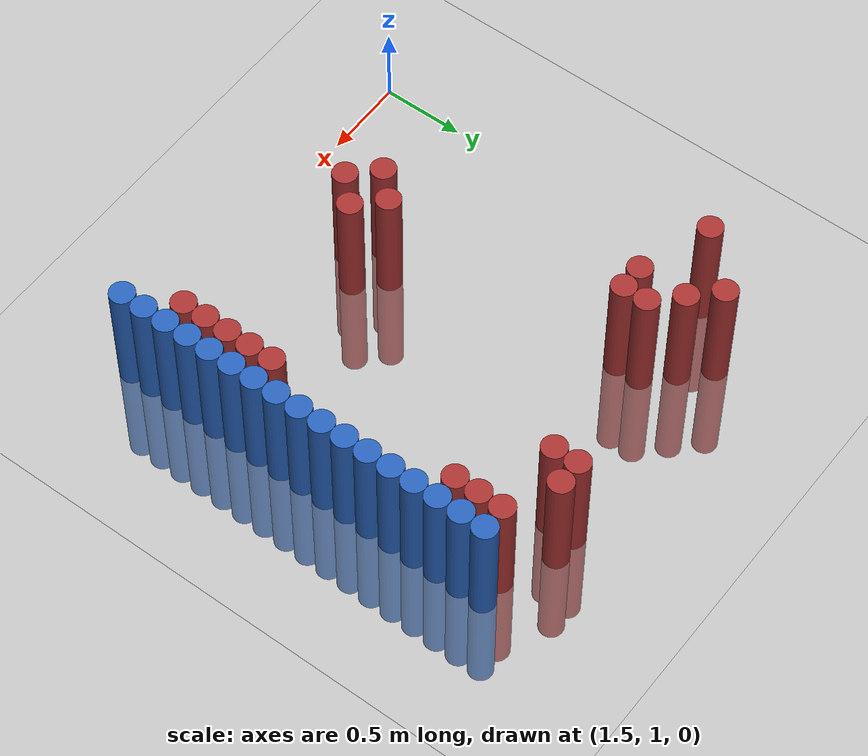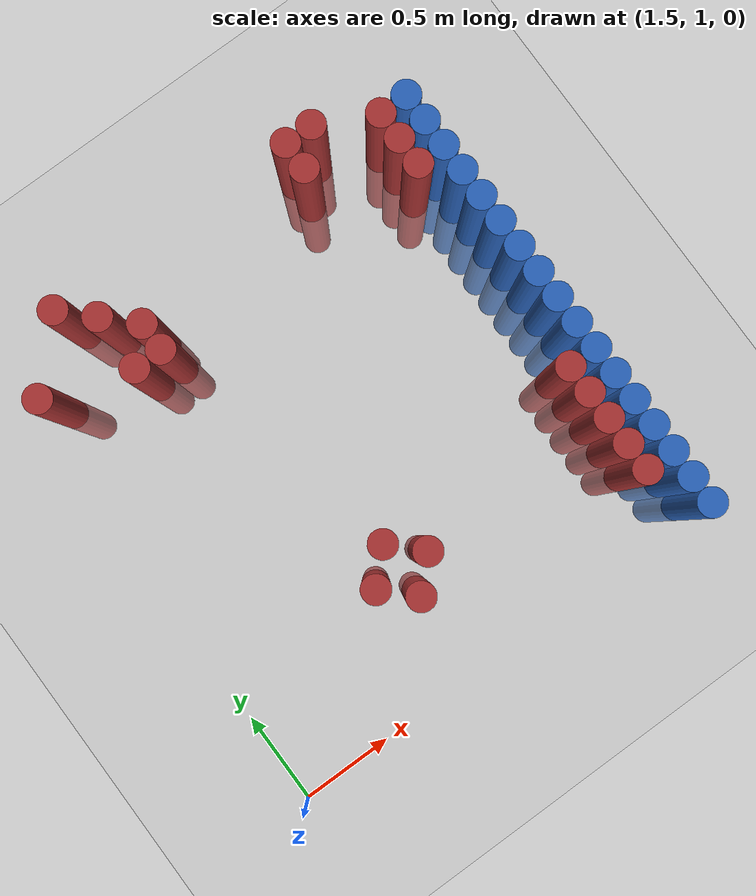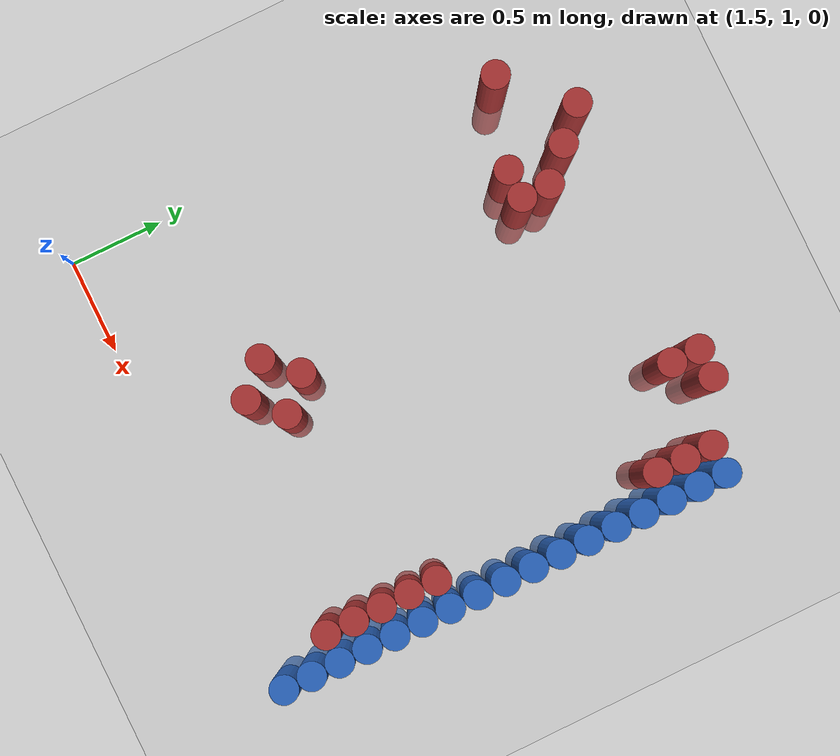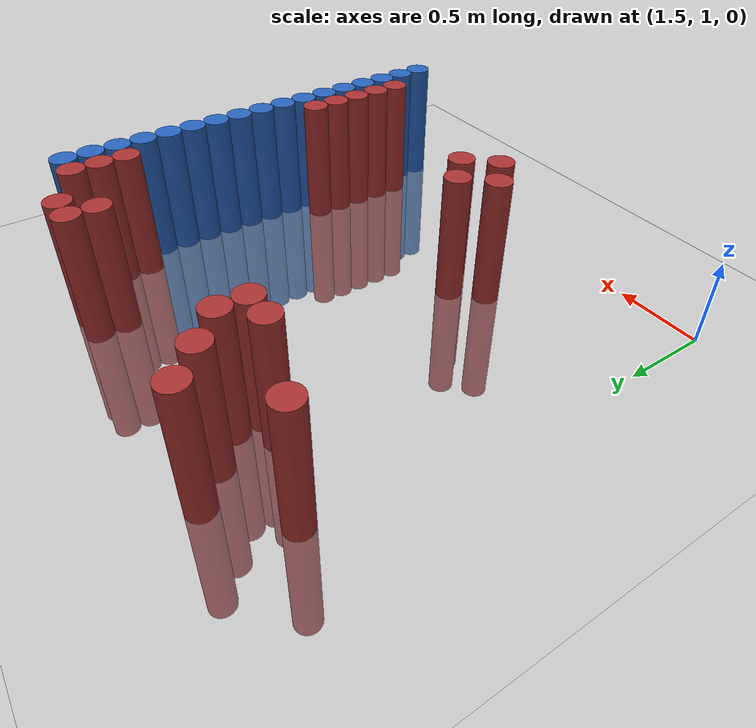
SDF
<sdf version="1.6">
 <world name="default">
  <model name="ground_plane">
   <static>1</static>
   <link name="link">
    <collision name="collision">
     <geometry><plane><normal>0 0 1</normal><size>100 100</size></plane></geometry>
     <surface><friction><ode><mu>100</mu><mu2>50</mu2></ode></friction></surface>
    </collision>
    <visual name="visual">
     <cast_shadows>0</cast_shadows>
     <geometry><plane><normal>0 0 1</normal><size>100 100</size></plane></geometry>
     <material>
      <script><uri>file://media/materials/scripts/gazebo.material</uri><name>Gazebo/Grey</name></script>
     </material>
    </visual>
   </link>
  </model>
  <model name="unit_cylinder_130">
   <static>1</static>
   <pose>3.925000 1.225000 0.000000 0.000000 0.000000 0.000000</pose>
   <link name="link">
    <inertial>
     <mass>1</mass>
     <inertia><ixx>0.145833</ixx><ixy>0</ixy><ixz>0</ixz><iyy>0.145833</iyy><iyz>0</iyz><izz>0.125</izz></inertia>
    </inertial>
    <collision name="collision">
     <geometry><cylinder><radius>0.075000</radius><length>1.5</length></cylinder></geometry>
    </collision>
    <visual name="visual">
     <geometry><cylinder><radius>0.075000</radius><length>1.5</length></cylinder></geometry>
     <material>
      <ambient>0.152000 0.379000 0.720000 1</ambient>
      <diffuse>0.152000 0.379000 0.720000 1</diffuse>
     </material>
     <material>
      <script><name>Gazebo/Grey</name><uri>file://media/materials/scripts/gazebo.material</uri></script>
     </material>
    </visual>
   </link>
  </model>
  <model name="unit_cylinder_132">
   <static>1</static>
   <pose>3.925000 1.375000 0.000000 0.000000 0.000000 0.000000</pose>
   <link name="link">
    <inertial>
     <mass>1</mass>
     <inertia><ixx>0.145833</ixx><ixy>0</ixy><ixz>0</ixz><iyy>0.145833</iyy><iyz>0</iyz><izz>0.125</izz></inertia>
    </inertial>
    <collision name="collision">
     <geometry><cylinder><radius>0.075000</radius><length>1.5</length></cylinder></geometry>
    </collision>
    <visual name="visual">
     <geometry><cylinder><radius>0.075000</radius><length>1.5</length></cylinder></geometry>
     <material>
      <ambient>0.152000 0.379000 0.720000 1</ambient>
      <diffuse>0.152000 0.379000 0.720000 1</diffuse>
     </material>
     <material>
      <script><name>Gazebo/Grey</name><uri>file://media/materials/scripts/gazebo.material</uri></script>
     </material>
    </visual>
   </link>
  </model>
  <model name="unit_cylinder_134">
   <static>1</static>
   <pose>3.925000 1.525000 0.000000 0.000000 0.000000 0.000000</pose>
   <link name="link">
    <inertial>
     <mass>1</mass>
     <inertia><ixx>0.145833</ixx><ixy>0</ixy><ixz>0</ixz><iyy>0.145833</iyy><iyz>0</iyz><izz>0.125</izz></inertia>
    </inertial>
    <collision name="collision">
     <geometry><cylinder><radius>0.075000</radius><length>1.5</length></cylinder></geometry>
    </collision>
    <visual name="visual">
     <geometry><cylinder><radius>0.075000</radius><length>1.5</length></cylinder></geometry>
     <material>
      <ambient>0.152000 0.379000 0.720000 1</ambient>
      <diffuse>0.152000 0.379000 0.720000 1</diffuse>
     </material>
     <material>
      <script><name>Gazebo/Grey</name><uri>file://media/materials/scripts/gazebo.material</uri></script>
     </material>
    </visual>
   </link>
  </model>
  <model name="unit_cylinder_136">
   <static>1</static>
   <pose>3.925000 1.675000 0.000000 0.000000 0.000000 0.000000</pose>
   <link name="link">
    <inertial>
     <mass>1</mass>
     <inertia><ixx>0.145833</ixx><ixy>0</ixy><ixz>0</ixz><iyy>0.145833</iyy><iyz>0</iyz><izz>0.125</izz></inertia>
    </inertial>
    <collision name="collision">
     <geometry><cylinder><radius>0.075000</radius><length>1.5</length></cylinder></geometry>
    </collision>
    <visual name="visual">
     <geometry><cylinder><radius>0.075000</radius><length>1.5</length></cylinder></geometry>
     <material>
      <ambient>0.152000 0.379000 0.720000 1</ambient>
      <diffuse>0.152000 0.379000 0.720000 1</diffuse>
     </material>
     <material>
      <script><name>Gazebo/Grey</name><uri>file://media/materials/scripts/gazebo.material</uri></script>
     </material>
    </visual>
   </link>
  </model>
  <model name="unit_cylinder_138">
   <static>1</static>
   <pose>3.925000 1.825000 0.000000 0.000000 0.000000 0.000000</pose>
   <link name="link">
    <inertial>
     <mass>1</mass>
     <inertia><ixx>0.145833</ixx><ixy>0</ixy><ixz>0</ixz><iyy>0.145833</iyy><iyz>0</iyz><izz>0.125</izz></inertia>
    </inertial>
    <collision name="collision">
     <geometry><cylinder><radius>0.075000</radius><length>1.5</length></cylinder></geometry>
    </collision>
    <visual name="visual">
     <geometry><cylinder><radius>0.075000</radius><length>1.5</length></cylinder></geometry>
     <material>
      <ambient>0.152000 0.379000 0.720000 1</ambient>
      <diffuse>0.152000 0.379000 0.720000 1</diffuse>
     </material>
     <material>
      <script><name>Gazebo/Grey</name><uri>file://media/materials/scripts/gazebo.material</uri></script>
     </material>
    </visual>
   </link>
  </model>
  <model name="unit_cylinder_140">
   <static>1</static>
   <pose>3.925000 1.975000 0.000000 0.000000 0.000000 0.000000</pose>
   <link name="link">
    <inertial>
     <mass>1</mass>
     <inertia><ixx>0.145833</ixx><ixy>0</ixy><ixz>0</ixz><iyy>0.145833</iyy><iyz>0</iyz><izz>0.125</izz></inertia>
    </inertial>
    <collision name="collision">
     <geometry><cylinder><radius>0.075000</radius><length>1.5</length></cylinder></geometry>
    </collision>
    <visual name="visual">
     <geometry><cylinder><radius>0.075000</radius><length>1.5</length></cylinder></geometry>
     <material>
      <ambient>0.152000 0.379000 0.720000 1</ambient>
      <diffuse>0.152000 0.379000 0.720000 1</diffuse>
     </material>
     <material>
      <script><name>Gazebo/Grey</name><uri>file://media/materials/scripts/gazebo.material</uri></script>
     </material>
    </visual>
   </link>
  </model>
  <model name="unit_cylinder_142">
   <static>1</static>
   <pose>3.925000 2.125000 0.000000 0.000000 0.000000 0.000000</pose>
   <link name="link">
    <inertial>
     <mass>1</mass>
     <inertia><ixx>0.145833</ixx><ixy>0</ixy><ixz>0</ixz><iyy>0.145833</iyy><iyz>0</iyz><izz>0.125</izz></inertia>
    </inertial>
    <collision name="collision">
     <geometry><cylinder><radius>0.075000</radius><length>1.5</length></cylinder></geometry>
    </collision>
    <visual name="visual">
     <geometry><cylinder><radius>0.075000</radius><length>1.5</length></cylinder></geometry>
     <material>
      <ambient>0.152000 0.379000 0.720000 1</ambient>
      <diffuse>0.152000 0.379000 0.720000 1</diffuse>
     </material>
     <material>
      <script><name>Gazebo/Grey</name><uri>file://media/materials/scripts/gazebo.material</uri></script>
     </material>
    </visual>
   </link>
  </model>
  <model name="unit_cylinder_144">
   <static>1</static>
   <pose>3.925000 2.275000 0.000000 0.000000 0.000000 0.000000</pose>
   <link name="link">
    <inertial>
     <mass>1</mass>
     <inertia><ixx>0.145833</ixx><ixy>0</ixy><ixz>0</ixz><iyy>0.145833</iyy><iyz>0</iyz><izz>0.125</izz></inertia>
    </inertial>
    <collision name="collision">
     <geometry><cylinder><radius>0.075000</radius><length>1.5</length></cylinder></geometry>
    </collision>
    <visual name="visual">
     <geometry><cylinder><radius>0.075000</radius><length>1.5</length></cylinder></geometry>
     <material>
      <ambient>0.152000 0.379000 0.720000 1</ambient>
      <diffuse>0.152000 0.379000 0.720000 1</diffuse>
     </material>
     <material>
      <script><name>Gazebo/Grey</name><uri>file://media/materials/scripts/gazebo.material</uri></script>
     </material>
    </visual>
   </link>
  </model>
  <model name="unit_cylinder_146">
   <static>1</static>
   <pose>3.925000 2.425000 0.000000 0.000000 0.000000 0.000000</pose>
   <link name="link">
    <inertial>
     <mass>1</mass>
     <inertia><ixx>0.145833</ixx><ixy>0</ixy><ixz>0</ixz><iyy>0.145833</iyy><iyz>0</iyz><izz>0.125</izz></inertia>
    </inertial>
    <collision name="collision">
     <geometry><cylinder><radius>0.075000</radius><length>1.5</length></cylinder></geometry>
    </collision>
    <visual name="visual">
     <geometry><cylinder><radius>0.075000</radius><length>1.5</length></cylinder></geometry>
     <material>
      <ambient>0.152000 0.379000 0.720000 1</ambient>
      <diffuse>0.152000 0.379000 0.720000 1</diffuse>
     </material>
     <material>
      <script><name>Gazebo/Grey</name><uri>file://media/materials/scripts/gazebo.material</uri></script>
     </material>
    </visual>
   </link>
  </model>
  <model name="unit_cylinder_148">
   <static>1</static>
   <pose>3.925000 2.575000 0.000000 0.000000 0.000000 0.000000</pose>
   <link name="link">
    <inertial>
     <mass>1</mass>
     <inertia><ixx>0.145833</ixx><ixy>0</ixy><ixz>0</ixz><iyy>0.145833</iyy><iyz>0</iyz><izz>0.125</izz></inertia>
    </inertial>
    <collision name="collision">
     <geometry><cylinder><radius>0.075000</radius><length>1.5</length></cylinder></geometry>
    </collision>
    <visual name="visual">
     <geometry><cylinder><radius>0.075000</radius><length>1.5</length></cylinder></geometry>
     <material>
      <ambient>0.152000 0.379000 0.720000 1</ambient>
      <diffuse>0.152000 0.379000 0.720000 1</diffuse>
     </material>
     <material>
      <script><name>Gazebo/Grey</name><uri>file://media/materials/scripts/gazebo.material</uri></script>
     </material>
    </visual>
   </link>
  </model>
  <model name="unit_cylinder_150">
   <static>1</static>
   <pose>3.925000 2.725000 0.000000 0.000000 0.000000 0.000000</pose>
   <link name="link">
    <inertial>
     <mass>1</mass>
     <inertia><ixx>0.145833</ixx><ixy>0</ixy><ixz>0</ixz><iyy>0.145833</iyy><iyz>0</iyz><izz>0.125</izz></inertia>
    </inertial>
    <collision name="collision">
     <geometry><cylinder><radius>0.075000</radius><length>1.5</length></cylinder></geometry>
    </collision>
    <visual name="visual">
     <geometry><cylinder><radius>0.075000</radius><length>1.5</length></cylinder></geometry>
     <material>
      <ambient>0.152000 0.379000 0.720000 1</ambient>
      <diffuse>0.152000 0.379000 0.720000 1</diffuse>
     </material>
     <material>
      <script><name>Gazebo/Grey</name><uri>file://media/materials/scripts/gazebo.material</uri></script>
     </material>
    </visual>
   </link>
  </model>
  <model name="unit_cylinder_152">
   <static>1</static>
   <pose>3.925000 2.875000 0.000000 0.000000 0.000000 0.000000</pose>
   <link name="link">
    <inertial>
     <mass>1</mass>
     <inertia><ixx>0.145833</ixx><ixy>0</ixy><ixz>0</ixz><iyy>0.145833</iyy><iyz>0</iyz><izz>0.125</izz></inertia>
    </inertial>
    <collision name="collision">
     <geometry><cylinder><radius>0.075000</radius><length>1.5</length></cylinder></geometry>
    </collision>
    <visual name="visual">
     <geometry><cylinder><radius>0.075000</radius><length>1.5</length></cylinder></geometry>
     <material>
      <ambient>0.152000 0.379000 0.720000 1</ambient>
      <diffuse>0.152000 0.379000 0.720000 1</diffuse>
     </material>
     <material>
      <script><name>Gazebo/Grey</name><uri>file://media/materials/scripts/gazebo.material</uri></script>
     </material>
    </visual>
   </link>
  </model>
  <model name="unit_cylinder_154">
   <static>1</static>
   <pose>3.925000 3.025000 0.000000 0.000000 0.000000 0.000000</pose>
   <link name="link">
    <inertial>
     <mass>1</mass>
     <inertia><ixx>0.145833</ixx><ixy>0</ixy><ixz>0</ixz><iyy>0.145833</iyy><iyz>0</iyz><izz>0.125</izz></inertia>
    </inertial>
    <collision name="collision">
     <geometry><cylinder><radius>0.075000</radius><length>1.5</length></cylinder></geometry>
    </collision>
    <visual name="visual">
     <geometry><cylinder><radius>0.075000</radius><length>1.5</length></cylinder></geometry>
     <material>
      <ambient>0.152000 0.379000 0.720000 1</ambient>
      <diffuse>0.152000 0.379000 0.720000 1</diffuse>
     </material>
     <material>
      <script><name>Gazebo/Grey</name><uri>file://media/materials/scripts/gazebo.material</uri></script>
     </material>
    </visual>
   </link>
  </model>
  <model name="unit_cylinder_156">
   <static>1</static>
   <pose>3.925000 3.175000 0.000000 0.000000 0.000000 0.000000</pose>
   <link name="link">
    <inertial>
     <mass>1</mass>
     <inertia><ixx>0.145833</ixx><ixy>0</ixy><ixz>0</ixz><iyy>0.145833</iyy><iyz>0</iyz><izz>0.125</izz></inertia>
    </inertial>
    <collision name="collision">
     <geometry><cylinder><radius>0.075000</radius><length>1.5</length></cylinder></geometry>
    </collision>
    <visual name="visual">
     <geometry><cylinder><radius>0.075000</radius><length>1.5</length></cylinder></geometry>
     <material>
      <ambient>0.152000 0.379000 0.720000 1</ambient>
      <diffuse>0.152000 0.379000 0.720000 1</diffuse>
     </material>
     <material>
      <script><name>Gazebo/Grey</name><uri>file://media/materials/scripts/gazebo.material</uri></script>
     </material>
    </visual>
   </link>
  </model>
  <model name="unit_cylinder_158">
   <static>1</static>
   <pose>3.925000 3.325000 0.000000 0.000000 0.000000 0.000000</pose>
   <link name="link">
    <inertial>
     <mass>1</mass>
     <inertia><ixx>0.145833</ixx><ixy>0</ixy><ixz>0</ixz><iyy>0.145833</iyy><iyz>0</iyz><izz>0.125</izz></inertia>
    </inertial>
    <collision name="collision">
     <geometry><cylinder><radius>0.075000</radius><length>1.5</length></cylinder></geometry>
    </collision>
    <visual name="visual">
     <geometry><cylinder><radius>0.075000</radius><length>1.5</length></cylinder></geometry>
     <material>
      <ambient>0.152000 0.379000 0.720000 1</ambient>
      <diffuse>0.152000 0.379000 0.720000 1</diffuse>
     </material>
     <material>
      <script><name>Gazebo/Grey</name><uri>file://media/materials/scripts/gazebo.material</uri></script>
     </material>
    </visual>
   </link>
  </model>
  <model name="unit_cylinder_160">
   <static>1</static>
   <pose>3.925000 3.475000 0.000000 0.000000 0.000000 0.000000</pose>
   <link name="link">
    <inertial>
     <mass>1</mass>
     <inertia><ixx>0.145833</ixx><ixy>0</ixy><ixz>0</ixz><iyy>0.145833</iyy><iyz>0</iyz><izz>0.125</izz></inertia>
    </inertial>
    <collision name="collision">
     <geometry><cylinder><radius>0.075000</radius><length>1.5</length></cylinder></geometry>
    </collision>
    <visual name="visual">
     <geometry><cylinder><radius>0.075000</radius><length>1.5</length></cylinder></geometry>
     <material>
      <ambient>0.152000 0.379000 0.720000 1</ambient>
      <diffuse>0.152000 0.379000 0.720000 1</diffuse>
     </material>
     <material>
      <script><name>Gazebo/Grey</name><uri>file://media/materials/scripts/gazebo.material</uri></script>
     </material>
    </visual>
   </link>
  </model>
  <model name="unit_cylinder_425">
   <static>1</static>
   <pose>1.675000 3.325000 0.000000 0.000000 0.000000 0.000000</pose>
   <link name="link">
    <inertial>
     <mass>1</mass>
     <inertia><ixx>0.145833</ixx><ixy>0</ixy><ixz>0</ixz><iyy>0.145833</iyy><iyz>0</iyz><izz>0.125</izz></inertia>
    </inertial>
    <collision name="collision">
     <geometry><cylinder><radius>0.075000</radius><length>1.5</length></cylinder></geometry>
    </collision>
    <visual name="visual">
     <geometry><cylinder><radius>0.075000</radius><length>1.5</length></cylinder></geometry>
     <material>
      <ambient>0.648000 0.192000 0.192000 1</ambient>
      <diffuse>0.648000 0.192000 0.192000 1</diffuse>
     </material>
     <material>
      <script><name>Gazebo/Grey</name><uri>file://media/materials/scripts/gazebo.material</uri></script>
     </material>
    </visual>
   </link>
  </model>
  <model name="unit_cylinder_432">
   <static>1</static>
   <pose>1.975000 3.625000 0.000000 0.000000 0.000000 0.000000</pose>
   <link name="link">
    <inertial>
     <mass>1</mass>
     <inertia><ixx>0.145833</ixx><ixy>0</ixy><ixz>0</ixz><iyy>0.145833</iyy><iyz>0</iyz><izz>0.125</izz></inertia>
    </inertial>
    <collision name="collision">
     <geometry><cylinder><radius>0.075000</radius><length>1.5</length></cylinder></geometry>
    </collision>
    <visual name="visual">
     <geometry><cylinder><radius>0.075000</radius><length>1.5</length></cylinder></geometry>
     <material>
      <ambient>0.648000 0.192000 0.192000 1</ambient>
      <diffuse>0.648000 0.192000 0.192000 1</diffuse>
     </material>
     <material>
      <script><name>Gazebo/Grey</name><uri>file://media/materials/scripts/gazebo.material</uri></script>
     </material>
    </visual>
   </link>
  </model>
  <model name="unit_cylinder_436">
   <static>1</static>
   <pose>2.125000 3.175000 0.000000 0.000000 0.000000 0.000000</pose>
   <link name="link">
    <inertial>
     <mass>1</mass>
     <inertia><ixx>0.145833</ixx><ixy>0</ixy><ixz>0</ixz><iyy>0.145833</iyy><iyz>0</iyz><izz>0.125</izz></inertia>
    </inertial>
    <collision name="collision">
     <geometry><cylinder><radius>0.075000</radius><length>1.5</length></cylinder></geometry>
    </collision>
    <visual name="visual">
     <geometry><cylinder><radius>0.075000</radius><length>1.5</length></cylinder></geometry>
     <material>
      <ambient>0.648000 0.192000 0.192000 1</ambient>
      <diffuse>0.648000 0.192000 0.192000 1</diffuse>
     </material>
     <material>
      <script><name>Gazebo/Grey</name><uri>file://media/materials/scripts/gazebo.material</uri></script>
     </material>
    </visual>
   </link>
  </model>
  <model name="unit_cylinder_437">
   <static>1</static>
   <pose>2.125000 3.475000 0.000000 0.000000 0.000000 0.000000</pose>
   <link name="link">
    <inertial>
     <mass>1</mass>
     <inertia><ixx>0.145833</ixx><ixy>0</ixy><ixz>0</ixz><iyy>0.145833</iyy><iyz>0</iyz><izz>0.125</izz></inertia>
    </inertial>
    <collision name="collision">
     <geometry><cylinder><radius>0.075000</radius><length>1.5</length></cylinder></geometry>
    </collision>
    <visual name="visual">
     <geometry><cylinder><radius>0.075000</radius><length>1.5</length></cylinder></geometry>
     <material>
      <ambient>0.648000 0.192000 0.192000 1</ambient>
      <diffuse>0.648000 0.192000 0.192000 1</diffuse>
     </material>
     <material>
      <script><name>Gazebo/Grey</name><uri>file://media/materials/scripts/gazebo.material</uri></script>
     </material>
    </visual>
   </link>
  </model>
  <model name="unit_cylinder_439">
   <static>1</static>
   <pose>2.275000 3.175000 0.000000 0.000000 0.000000 0.000000</pose>
   <link name="link">
    <inertial>
     <mass>1</mass>
     <inertia><ixx>0.145833</ixx><ixy>0</ixy><ixz>0</ixz><iyy>0.145833</iyy><iyz>0</iyz><izz>0.125</izz></inertia>
    </inertial>
    <collision name="collision">
     <geometry><cylinder><radius>0.075000</radius><length>1.5</length></cylinder></geometry>
    </collision>
    <visual name="visual">
     <geometry><cylinder><radius>0.075000</radius><length>1.5</length></cylinder></geometry>
     <material>
      <ambient>0.648000 0.192000 0.192000 1</ambient>
      <diffuse>0.648000 0.192000 0.192000 1</diffuse>
     </material>
     <material>
      <script><name>Gazebo/Grey</name><uri>file://media/materials/scripts/gazebo.material</uri></script>
     </material>
    </visual>
   </link>
  </model>
  <model name="unit_cylinder_440">
   <static>1</static>
   <pose>2.275000 3.325000 0.000000 0.000000 0.000000 0.000000</pose>
   <link name="link">
    <inertial>
     <mass>1</mass>
     <inertia><ixx>0.145833</ixx><ixy>0</ixy><ixz>0</ixz><iyy>0.145833</iyy><iyz>0</iyz><izz>0.125</izz></inertia>
    </inertial>
    <collision name="collision">
     <geometry><cylinder><radius>0.075000</radius><length>1.5</length></cylinder></geometry>
    </collision>
    <visual name="visual">
     <geometry><cylinder><radius>0.075000</radius><length>1.5</length></cylinder></geometry>
     <material>
      <ambient>0.648000 0.192000 0.192000 1</ambient>
      <diffuse>0.648000 0.192000 0.192000 1</diffuse>
     </material>
     <material>
      <script><name>Gazebo/Grey</name><uri>file://media/materials/scripts/gazebo.material</uri></script>
     </material>
    </visual>
   </link>
  </model>
  <model name="unit_cylinder_441">
   <static>1</static>
   <pose>2.425000 1.675000 0.000000 0.000000 0.000000 0.000000</pose>
   <link name="link">
    <inertial>
     <mass>1</mass>
     <inertia><ixx>0.145833</ixx><ixy>0</ixy><ixz>0</ixz><iyy>0.145833</iyy><iyz>0</iyz><izz>0.125</izz></inertia>
    </inertial>
    <collision name="collision">
     <geometry><cylinder><radius>0.075000</radius><length>1.5</length></cylinder></geometry>
    </collision>
    <visual name="visual">
     <geometry><cylinder><radius>0.075000</radius><length>1.5</length></cylinder></geometry>
     <material>
      <ambient>0.648000 0.192000 0.192000 1</ambient>
      <diffuse>0.648000 0.192000 0.192000 1</diffuse>
     </material>
     <material>
      <script><name>Gazebo/Grey</name><uri>file://media/materials/scripts/gazebo.material</uri></script>
     </material>
    </visual>
   </link>
  </model>
  <model name="unit_cylinder_443">
   <static>1</static>
   <pose>2.575000 1.525000 0.000000 0.000000 0.000000 0.000000</pose>
   <link name="link">
    <inertial>
     <mass>1</mass>
     <inertia><ixx>0.145833</ixx><ixy>0</ixy><ixz>0</ixz><iyy>0.145833</iyy><iyz>0</iyz><izz>0.125</izz></inertia>
    </inertial>
    <collision name="collision">
     <geometry><cylinder><radius>0.075000</radius><length>1.5</length></cylinder></geometry>
    </collision>
    <visual name="visual">
     <geometry><cylinder><radius>0.075000</radius><length>1.5</length></cylinder></geometry>
     <material>
      <ambient>0.648000 0.192000 0.192000 1</ambient>
      <diffuse>0.648000 0.192000 0.192000 1</diffuse>
     </material>
     <material>
      <script><name>Gazebo/Grey</name><uri>file://media/materials/scripts/gazebo.material</uri></script>
     </material>
    </visual>
   </link>
  </model>
  <model name="unit_cylinder_444">
   <static>1</static>
   <pose>2.575000 1.825000 0.000000 0.000000 0.000000 0.000000</pose>
   <link name="link">
    <inertial>
     <mass>1</mass>
     <inertia><ixx>0.145833</ixx><ixy>0</ixy><ixz>0</ixz><iyy>0.145833</iyy><iyz>0</iyz><izz>0.125</izz></inertia>
    </inertial>
    <collision name="collision">
     <geometry><cylinder><radius>0.075000</radius><length>1.5</length></cylinder></geometry>
    </collision>
    <visual name="visual">
     <geometry><cylinder><radius>0.075000</radius><length>1.5</length></cylinder></geometry>
     <material>
      <ambient>0.648000 0.192000 0.192000 1</ambient>
      <diffuse>0.648000 0.192000 0.192000 1</diffuse>
     </material>
     <material>
      <script><name>Gazebo/Grey</name><uri>file://media/materials/scripts/gazebo.material</uri></script>
     </material>
    </visual>
   </link>
  </model>
  <model name="unit_cylinder_446">
   <static>1</static>
   <pose>2.725000 1.675000 0.000000 0.000000 0.000000 0.000000</pose>
   <link name="link">
    <inertial>
     <mass>1</mass>
     <inertia><ixx>0.145833</ixx><ixy>0</ixy><ixz>0</ixz><iyy>0.145833</iyy><iyz>0</iyz><izz>0.125</izz></inertia>
    </inertial>
    <collision name="collision">
     <geometry><cylinder><radius>0.075000</radius><length>1.5</length></cylinder></geometry>
    </collision>
    <visual name="visual">
     <geometry><cylinder><radius>0.075000</radius><length>1.5</length></cylinder></geometry>
     <material>
      <ambient>0.648000 0.192000 0.192000 1</ambient>
      <diffuse>0.648000 0.192000 0.192000 1</diffuse>
     </material>
     <material>
      <script><name>Gazebo/Grey</name><uri>file://media/materials/scripts/gazebo.material</uri></script>
     </material>
    </visual>
   </link>
  </model>
  <model name="unit_cylinder_452">
   <static>1</static>
   <pose>3.325000 3.475000 0.000000 0.000000 0.000000 0.000000</pose>
   <link name="link">
    <inertial>
     <mass>1</mass>
     <inertia><ixx>0.145833</ixx><ixy>0</ixy><ixz>0</ixz><iyy>0.145833</iyy><iyz>0</iyz><izz>0.125</izz></inertia>
    </inertial>
    <collision name="collision">
     <geometry><cylinder><radius>0.075000</radius><length>1.5</length></cylinder></geometry>
    </collision>
    <visual name="visual">
     <geometry><cylinder><radius>0.075000</radius><length>1.5</length></cylinder></geometry>
     <material>
      <ambient>0.648000 0.192000 0.192000 1</ambient>
      <diffuse>0.648000 0.192000 0.192000 1</diffuse>
     </material>
     <material>
      <script><name>Gazebo/Grey</name><uri>file://media/materials/scripts/gazebo.material</uri></script>
     </material>
    </visual>
   </link>
  </model>
  <model name="unit_cylinder_453">
   <static>1</static>
   <pose>3.325000 3.625000 0.000000 0.000000 0.000000 0.000000</pose>
   <link name="link">
    <inertial>
     <mass>1</mass>
     <inertia><ixx>0.145833</ixx><ixy>0</ixy><ixz>0</ixz><iyy>0.145833</iyy><iyz>0</iyz><izz>0.125</izz></inertia>
    </inertial>
    <collision name="collision">
     <geometry><cylinder><radius>0.075000</radius><length>1.5</length></cylinder></geometry>
    </collision>
    <visual name="visual">
     <geometry><cylinder><radius>0.075000</radius><length>1.5</length></cylinder></geometry>
     <material>
      <ambient>0.648000 0.192000 0.192000 1</ambient>
      <diffuse>0.648000 0.192000 0.192000 1</diffuse>
     </material>
     <material>
      <script><name>Gazebo/Grey</name><uri>file://media/materials/scripts/gazebo.material</uri></script>
     </material>
    </visual>
   </link>
  </model>
  <model name="unit_cylinder_457">
   <static>1</static>
   <pose>3.475000 3.625000 0.000000 0.000000 0.000000 0.000000</pose>
   <link name="link">
    <inertial>
     <mass>1</mass>
     <inertia><ixx>0.145833</ixx><ixy>0</ixy><ixz>0</ixz><iyy>0.145833</iyy><iyz>0</iyz><izz>0.125</izz></inertia>
    </inertial>
    <collision name="collision">
     <geometry><cylinder><radius>0.075000</radius><length>1.5</length></cylinder></geometry>
    </collision>
    <visual name="visual">
     <geometry><cylinder><radius>0.075000</radius><length>1.5</length></cylinder></geometry>
     <material>
      <ambient>0.648000 0.192000 0.192000 1</ambient>
      <diffuse>0.648000 0.192000 0.192000 1</diffuse>
     </material>
     <material>
      <script><name>Gazebo/Grey</name><uri>file://media/materials/scripts/gazebo.material</uri></script>
     </material>
    </visual>
   </link>
  </model>
  <model name="unit_cylinder_476">
   <static>1</static>
   <pose>3.775000 1.375000 0.000000 0.000000 0.000000 0.000000</pose>
   <link name="link">
    <inertial>
     <mass>1</mass>
     <inertia><ixx>0.145833</ixx><ixy>0</ixy><ixz>0</ixz><iyy>0.145833</iyy><iyz>0</iyz><izz>0.125</izz></inertia>
    </inertial>
    <collision name="collision">
     <geometry><cylinder><radius>0.075000</radius><length>1.5</length></cylinder></geometry>
    </collision>
    <visual name="visual">
     <geometry><cylinder><radius>0.075000</radius><length>1.5</length></cylinder></geometry>
     <material>
      <ambient>0.648000 0.192000 0.192000 1</ambient>
      <diffuse>0.648000 0.192000 0.192000 1</diffuse>
     </material>
     <material>
      <script><name>Gazebo/Grey</name><uri>file://media/materials/scripts/gazebo.material</uri></script>
     </material>
    </visual>
   </link>
  </model>
  <model name="unit_cylinder_477">
   <static>1</static>
   <pose>3.775000 1.525000 0.000000 0.000000 0.000000 0.000000</pose>
   <link name="link">
    <inertial>
     <mass>1</mass>
     <inertia><ixx>0.145833</ixx><ixy>0</ixy><ixz>0</ixz><iyy>0.145833</iyy><iyz>0</iyz><izz>0.125</izz></inertia>
    </inertial>
    <collision name="collision">
     <geometry><cylinder><radius>0.075000</radius><length>1.5</length></cylinder></geometry>
    </collision>
    <visual name="visual">
     <geometry><cylinder><radius>0.075000</radius><length>1.5</length></cylinder></geometry>
     <material>
      <ambient>0.648000 0.192000 0.192000 1</ambient>
      <diffuse>0.648000 0.192000 0.192000 1</diffuse>
     </material>
     <material>
      <script><name>Gazebo/Grey</name><uri>file://media/materials/scripts/gazebo.material</uri></script>
     </material>
    </visual>
   </link>
  </model>
  <model name="unit_cylinder_478">
   <static>1</static>
   <pose>3.775000 1.675000 0.000000 0.000000 0.000000 0.000000</pose>
   <link name="link">
    <inertial>
     <mass>1</mass>
     <inertia><ixx>0.145833</ixx><ixy>0</ixy><ixz>0</ixz><iyy>0.145833</iyy><iyz>0</iyz><izz>0.125</izz></inertia>
    </inertial>
    <collision name="collision">
     <geometry><cylinder><radius>0.075000</radius><length>1.5</length></cylinder></geometry>
    </collision>
    <visual name="visual">
     <geometry><cylinder><radius>0.075000</radius><length>1.5</length></cylinder></geometry>
     <material>
      <ambient>0.648000 0.192000 0.192000 1</ambient>
      <diffuse>0.648000 0.192000 0.192000 1</diffuse>
     </material>
     <material>
      <script><name>Gazebo/Grey</name><uri>file://media/materials/scripts/gazebo.material</uri></script>
     </material>
    </visual>
   </link>
  </model>
  <model name="unit_cylinder_479">
   <static>1</static>
   <pose>3.775000 1.825000 0.000000 0.000000 0.000000 0.000000</pose>
   <link name="link">
    <inertial>
     <mass>1</mass>
     <inertia><ixx>0.145833</ixx><ixy>0</ixy><ixz>0</ixz><iyy>0.145833</iyy><iyz>0</iyz><izz>0.125</izz></inertia>
    </inertial>
    <collision name="collision">
     <geometry><cylinder><radius>0.075000</radius><length>1.5</length></cylinder></geometry>
    </collision>
    <visual name="visual">
     <geometry><cylinder><radius>0.075000</radius><length>1.5</length></cylinder></geometry>
     <material>
      <ambient>0.648000 0.192000 0.192000 1</ambient>
      <diffuse>0.648000 0.192000 0.192000 1</diffuse>
     </material>
     <material>
      <script><name>Gazebo/Grey</name><uri>file://media/materials/scripts/gazebo.material</uri></script>
     </material>
    </visual>
   </link>
  </model>
  <model name="unit_cylinder_480">
   <static>1</static>
   <pose>3.775000 1.975000 0.000000 0.000000 0.000000 0.000000</pose>
   <link name="link">
    <inertial>
     <mass>1</mass>
     <inertia><ixx>0.145833</ixx><ixy>0</ixy><ixz>0</ixz><iyy>0.145833</iyy><iyz>0</iyz><izz>0.125</izz></inertia>
    </inertial>
    <collision name="collision">
     <geometry><cylinder><radius>0.075000</radius><length>1.5</length></cylinder></geometry>
    </collision>
    <visual name="visual">
     <geometry><cylinder><radius>0.075000</radius><length>1.5</length></cylinder></geometry>
     <material>
      <ambient>0.648000 0.192000 0.192000 1</ambient>
      <diffuse>0.648000 0.192000 0.192000 1</diffuse>
     </material>
     <material>
      <script><name>Gazebo/Grey</name><uri>file://media/materials/scripts/gazebo.material</uri></script>
     </material>
    </visual>
   </link>
  </model>
  <model name="unit_cylinder_481">
   <static>1</static>
   <pose>3.775000 3.175000 0.000000 0.000000 0.000000 0.000000</pose>
   <link name="link">
    <inertial>
     <mass>1</mass>
     <inertia><ixx>0.145833</ixx><ixy>0</ixy><ixz>0</ixz><iyy>0.145833</iyy><iyz>0</iyz><izz>0.125</izz></inertia>
    </inertial>
    <collision name="collision">
     <geometry><cylinder><radius>0.075000</radius><length>1.5</length></cylinder></geometry>
    </collision>
    <visual name="visual">
     <geometry><cylinder><radius>0.075000</radius><length>1.5</length></cylinder></geometry>
     <material>
      <ambient>0.648000 0.192000 0.192000 1</ambient>
      <diffuse>0.648000 0.192000 0.192000 1</diffuse>
     </material>
     <material>
      <script><name>Gazebo/Grey</name><uri>file://media/materials/scripts/gazebo.material</uri></script>
     </material>
    </visual>
   </link>
  </model>
  <model name="unit_cylinder_482">
   <static>1</static>
   <pose>3.775000 3.325000 0.000000 0.000000 0.000000 0.000000</pose>
   <link name="link">
    <inertial>
     <mass>1</mass>
     <inertia><ixx>0.145833</ixx><ixy>0</ixy><ixz>0</ixz><iyy>0.145833</iyy><iyz>0</iyz><izz>0.125</izz></inertia>
    </inertial>
    <collision name="collision">
     <geometry><cylinder><radius>0.075000</radius><length>1.5</length></cylinder></geometry>
    </collision>
    <visual name="visual">
     <geometry><cylinder><radius>0.075000</radius><length>1.5</length></cylinder></geometry>
     <material>
      <ambient>0.648000 0.192000 0.192000 1</ambient>
      <diffuse>0.648000 0.192000 0.192000 1</diffuse>
     </material>
     <material>
      <script><name>Gazebo/Grey</name><uri>file://media/materials/scripts/gazebo.material</uri></script>
     </material>
    </visual>
   </link>
  </model>
  <model name="unit_cylinder_483">
   <static>1</static>
   <pose>3.775000 3.475000 0.000000 0.000000 0.000000 0.000000</pose>
   <link name="link">
    <inertial>
     <mass>1</mass>
     <inertia><ixx>0.145833</ixx><ixy>0</ixy><ixz>0</ixz><iyy>0.145833</iyy><iyz>0</iyz><izz>0.125</izz></inertia>
    </inertial>
    <collision name="collision">
     <geometry><cylinder><radius>0.075000</radius><length>1.5</length></cylinder></geometry>
    </collision>
    <visual name="visual">
     <geometry><cylinder><radius>0.075000</radius><length>1.5</length></cylinder></geometry>
     <material>
      <ambient>0.648000 0.192000 0.192000 1</ambient>
      <diffuse>0.648000 0.192000 0.192000 1</diffuse>
     </material>
     <material>
      <script><name>Gazebo/Grey</name><uri>file://media/materials/scripts/gazebo.material</uri></script>
     </material>
    </visual>
   </link>
  </model>
  <model name="unit_cylinder_513">
   <static>1</static>
   <pose>3.925000 1.075000 0.000000 0.000000 0.000000 0.000000</pose>
   <link name="link">
    <inertial>
     <mass>1</mass>
     <inertia><ixx>0.145833</ixx><ixy>0</ixy><ixz>0</ixz><iyy>0.145833</iyy><iyz>0</iyz><izz>0.125</izz></inertia>
    </inertial>
    <collision name="collision">
     <geometry><cylinder><radius>0.075000</radius><length>1.5</length></cylinder></geometry>
    </collision>
    <visual name="visual">
     <geometry><cylinder><radius>0.075000</radius><length>1.5</length></cylinder></geometry>
     <material>
      <ambient>0.152000 0.379000 0.720000 1</ambient>
      <diffuse>0.152000 0.379000 0.720000 1</diffuse>
     </material>
     <material>
      <script><name>Gazebo/Grey</name><uri>file://media/materials/scripts/gazebo.material</uri></script>
     </material>
    </visual>
   </link>
  </model>
  <model name="unit_cylinder_514">
   <static>1</static>
   <pose>3.925000 1.225000 0.000000 0.000000 0.000000 0.000000</pose>
   <link name="link">
    <inertial>
     <mass>1</mass>
     <inertia><ixx>0.145833</ixx><ixy>0</ixy><ixz>0</ixz><iyy>0.145833</iyy><iyz>0</iyz><izz>0.125</izz></inertia>
    </inertial>
    <collision name="collision">
     <geometry><cylinder><radius>0.075000</radius><length>1.5</length></cylinder></geometry>
    </collision>
    <visual name="visual">
     <geometry><cylinder><radius>0.075000</radius><length>1.5</length></cylinder></geometry>
     <material>
      <ambient>0.152000 0.379000 0.720000 1</ambient>
      <diffuse>0.152000 0.379000 0.720000 1</diffuse>
     </material>
     <material>
      <script><name>Gazebo/Grey</name><uri>file://media/materials/scripts/gazebo.material</uri></script>
     </material>
    </visual>
   </link>
  </model>
  <model name="unit_cylinder_515">
   <static>1</static>
   <pose>3.925000 1.375000 0.000000 0.000000 0.000000 0.000000</pose>
   <link name="link">
    <inertial>
     <mass>1</mass>
     <inertia><ixx>0.145833</ixx><ixy>0</ixy><ixz>0</ixz><iyy>0.145833</iyy><iyz>0</iyz><izz>0.125</izz></inertia>
    </inertial>
    <collision name="collision">
     <geometry><cylinder><radius>0.075000</radius><length>1.5</length></cylinder></geometry>
    </collision>
    <visual name="visual">
     <geometry><cylinder><radius>0.075000</radius><length>1.5</length></cylinder></geometry>
     <material>
      <ambient>0.152000 0.379000 0.720000 1</ambient>
      <diffuse>0.152000 0.379000 0.720000 1</diffuse>
     </material>
     <material>
      <script><name>Gazebo/Grey</name><uri>file://media/materials/scripts/gazebo.material</uri></script>
     </material>
    </visual>
   </link>
  </model>
  <model name="unit_cylinder_516">
   <static>1</static>
   <pose>3.925000 1.525000 0.000000 0.000000 0.000000 0.000000</pose>
   <link name="link">
    <inertial>
     <mass>1</mass>
     <inertia><ixx>0.145833</ixx><ixy>0</ixy><ixz>0</ixz><iyy>0.145833</iyy><iyz>0</iyz><izz>0.125</izz></inertia>
    </inertial>
    <collision name="collision">
     <geometry><cylinder><radius>0.075000</radius><length>1.5</length></cylinder></geometry>
    </collision>
    <visual name="visual">
     <geometry><cylinder><radius>0.075000</radius><length>1.5</length></cylinder></geometry>
     <material>
      <ambient>0.152000 0.379000 0.720000 1</ambient>
      <diffuse>0.152000 0.379000 0.720000 1</diffuse>
     </material>
     <material>
      <script><name>Gazebo/Grey</name><uri>file://media/materials/scripts/gazebo.material</uri></script>
     </material>
    </visual>
   </link>
  </model>
  <model name="unit_cylinder_517">
   <static>1</static>
   <pose>3.925000 1.675000 0.000000 0.000000 0.000000 0.000000</pose>
   <link name="link">
    <inertial>
     <mass>1</mass>
     <inertia><ixx>0.145833</ixx><ixy>0</ixy><ixz>0</ixz><iyy>0.145833</iyy><iyz>0</iyz><izz>0.125</izz></inertia>
    </inertial>
    <collision name="collision">
     <geometry><cylinder><radius>0.075000</radius><length>1.5</length></cylinder></geometry>
    </collision>
    <visual name="visual">
     <geometry><cylinder><radius>0.075000</radius><length>1.5</length></cylinder></geometry>
     <material>
      <ambient>0.152000 0.379000 0.720000 1</ambient>
      <diffuse>0.152000 0.379000 0.720000 1</diffuse>
     </material>
     <material>
      <script><name>Gazebo/Grey</name><uri>file://media/materials/scripts/gazebo.material</uri></script>
     </material>
    </visual>
   </link>
  </model>
  <model name="unit_cylinder_518">
   <static>1</static>
   <pose>3.925000 1.825000 0.000000 0.000000 0.000000 0.000000</pose>
   <link name="link">
    <inertial>
     <mass>1</mass>
     <inertia><ixx>0.145833</ixx><ixy>0</ixy><ixz>0</ixz><iyy>0.145833</iyy><iyz>0</iyz><izz>0.125</izz></inertia>
    </inertial>
    <collision name="collision">
     <geometry><cylinder><radius>0.075000</radius><length>1.5</length></cylinder></geometry>
    </collision>
    <visual name="visual">
     <geometry><cylinder><radius>0.075000</radius><length>1.5</length></cylinder></geometry>
     <material>
      <ambient>0.152000 0.379000 0.720000 1</ambient>
      <diffuse>0.152000 0.379000 0.720000 1</diffuse>
     </material>
     <material>
      <script><name>Gazebo/Grey</name><uri>file://media/materials/scripts/gazebo.material</uri></script>
     </material>
    </visual>
   </link>
  </model>
  <model name="unit_cylinder_519">
   <static>1</static>
   <pose>3.925000 1.975000 0.000000 0.000000 0.000000 0.000000</pose>
   <link name="link">
    <inertial>
     <mass>1</mass>
     <inertia><ixx>0.145833</ixx><ixy>0</ixy><ixz>0</ixz><iyy>0.145833</iyy><iyz>0</iyz><izz>0.125</izz></inertia>
    </inertial>
    <collision name="collision">
     <geometry><cylinder><radius>0.075000</radius><length>1.5</length></cylinder></geometry>
    </collision>
    <visual name="visual">
     <geometry><cylinder><radius>0.075000</radius><length>1.5</length></cylinder></geometry>
     <material>
      <ambient>0.152000 0.379000 0.720000 1</ambient>
      <diffuse>0.152000 0.379000 0.720000 1</diffuse>
     </material>
     <material>
      <script><name>Gazebo/Grey</name><uri>file://media/materials/scripts/gazebo.material</uri></script>
     </material>
    </visual>
   </link>
  </model>
  <model name="unit_cylinder_520">
   <static>1</static>
   <pose>3.925000 2.125000 0.000000 0.000000 0.000000 0.000000</pose>
   <link name="link">
    <inertial>
     <mass>1</mass>
     <inertia><ixx>0.145833</ixx><ixy>0</ixy><ixz>0</ixz><iyy>0.145833</iyy><iyz>0</iyz><izz>0.125</izz></inertia>
    </inertial>
    <collision name="collision">
     <geometry><cylinder><radius>0.075000</radius><length>1.5</length></cylinder></geometry>
    </collision>
    <visual name="visual">
     <geometry><cylinder><radius>0.075000</radius><length>1.5</length></cylinder></geometry>
     <material>
      <ambient>0.152000 0.379000 0.720000 1</ambient>
      <diffuse>0.152000 0.379000 0.720000 1</diffuse>
     </material>
     <material>
      <script><name>Gazebo/Grey</name><uri>file://media/materials/scripts/gazebo.material</uri></script>
     </material>
    </visual>
   </link>
  </model>
  <model name="unit_cylinder_521">
   <static>1</static>
   <pose>3.925000 2.275000 0.000000 0.000000 0.000000 0.000000</pose>
   <link name="link">
    <inertial>
     <mass>1</mass>
     <inertia><ixx>0.145833</ixx><ixy>0</ixy><ixz>0</ixz><iyy>0.145833</iyy><iyz>0</iyz><izz>0.125</izz></inertia>
    </inertial>
    <collision name="collision">
     <geometry><cylinder><radius>0.075000</radius><length>1.5</length></cylinder></geometry>
    </collision>
    <visual name="visual">
     <geometry><cylinder><radius>0.075000</radius><length>1.5</length></cylinder></geometry>
     <material>
      <ambient>0.152000 0.379000 0.720000 1</ambient>
      <diffuse>0.152000 0.379000 0.720000 1</diffuse>
     </material>
     <material>
      <script><name>Gazebo/Grey</name><uri>file://media/materials/scripts/gazebo.material</uri></script>
     </material>
    </visual>
   </link>
  </model>
  <model name="unit_cylinder_522">
   <static>1</static>
   <pose>3.925000 2.425000 0.000000 0.000000 0.000000 0.000000</pose>
   <link name="link">
    <inertial>
     <mass>1</mass>
     <inertia><ixx>0.145833</ixx><ixy>0</ixy><ixz>0</ixz><iyy>0.145833</iyy><iyz>0</iyz><izz>0.125</izz></inertia>
    </inertial>
    <collision name="collision">
     <geometry><cylinder><radius>0.075000</radius><length>1.5</length></cylinder></geometry>
    </collision>
    <visual name="visual">
     <geometry><cylinder><radius>0.075000</radius><length>1.5</length></cylinder></geometry>
     <material>
      <ambient>0.152000 0.379000 0.720000 1</ambient>
      <diffuse>0.152000 0.379000 0.720000 1</diffuse>
     </material>
     <material>
      <script><name>Gazebo/Grey</name><uri>file://media/materials/scripts/gazebo.material</uri></script>
     </material>
    </visual>
   </link>
  </model>
  <model name="unit_cylinder_523">
   <static>1</static>
   <pose>3.925000 2.575000 0.000000 0.000000 0.000000 0.000000</pose>
   <link name="link">
    <inertial>
     <mass>1</mass>
     <inertia><ixx>0.145833</ixx><ixy>0</ixy><ixz>0</ixz><iyy>0.145833</iyy><iyz>0</iyz><izz>0.125</izz></inertia>
    </inertial>
    <collision name="collision">
     <geometry><cylinder><radius>0.075000</radius><length>1.5</length></cylinder></geometry>
    </collision>
    <visual name="visual">
     <geometry><cylinder><radius>0.075000</radius><length>1.5</length></cylinder></geometry>
     <material>
      <ambient>0.152000 0.379000 0.720000 1</ambient>
      <diffuse>0.152000 0.379000 0.720000 1</diffuse>
     </material>
     <material>
      <script><name>Gazebo/Grey</name><uri>file://media/materials/scripts/gazebo.material</uri></script>
     </material>
    </visual>
   </link>
  </model>
  <model name="unit_cylinder_524">
   <static>1</static>
   <pose>3.925000 2.725000 0.000000 0.000000 0.000000 0.000000</pose>
   <link name="link">
    <inertial>
     <mass>1</mass>
     <inertia><ixx>0.145833</ixx><ixy>0</ixy><ixz>0</ixz><iyy>0.145833</iyy><iyz>0</iyz><izz>0.125</izz></inertia>
    </inertial>
    <collision name="collision">
     <geometry><cylinder><radius>0.075000</radius><length>1.5</length></cylinder></geometry>
    </collision>
    <visual name="visual">
     <geometry><cylinder><radius>0.075000</radius><length>1.5</length></cylinder></geometry>
     <material>
      <ambient>0.152000 0.379000 0.720000 1</ambient>
      <diffuse>0.152000 0.379000 0.720000 1</diffuse>
     </material>
     <material>
      <script><name>Gazebo/Grey</name><uri>file://media/materials/scripts/gazebo.material</uri></script>
     </material>
    </visual>
   </link>
  </model>
  <model name="unit_cylinder_525">
   <static>1</static>
   <pose>3.925000 2.875000 0.000000 0.000000 0.000000 0.000000</pose>
   <link name="link">
    <inertial>
     <mass>1</mass>
     <inertia><ixx>0.145833</ixx><ixy>0</ixy><ixz>0</ixz><iyy>0.145833</iyy><iyz>0</iyz><izz>0.125</izz></inertia>
    </inertial>
    <collision name="collision">
     <geometry><cylinder><radius>0.075000</radius><length>1.5</length></cylinder></geometry>
    </collision>
    <visual name="visual">
     <geometry><cylinder><radius>0.075000</radius><length>1.5</length></cylinder></geometry>
     <material>
      <ambient>0.152000 0.379000 0.720000 1</ambient>
      <diffuse>0.152000 0.379000 0.720000 1</diffuse>
     </material>
     <material>
      <script><name>Gazebo/Grey</name><uri>file://media/materials/scripts/gazebo.material</uri></script>
     </material>
    </visual>
   </link>
  </model>
  <model name="unit_cylinder_526">
   <static>1</static>
   <pose>3.925000 3.025000 0.000000 0.000000 0.000000 0.000000</pose>
   <link name="link">
    <inertial>
     <mass>1</mass>
     <inertia><ixx>0.145833</ixx><ixy>0</ixy><ixz>0</ixz><iyy>0.145833</iyy><iyz>0</iyz><izz>0.125</izz></inertia>
    </inertial>
    <collision name="collision">
     <geometry><cylinder><radius>0.075000</radius><length>1.5</length></cylinder></geometry>
    </collision>
    <visual name="visual">
     <geometry><cylinder><radius>0.075000</radius><length>1.5</length></cylinder></geometry>
     <material>
      <ambient>0.152000 0.379000 0.720000 1</ambient>
      <diffuse>0.152000 0.379000 0.720000 1</diffuse>
     </material>
     <material>
      <script><name>Gazebo/Grey</name><uri>file://media/materials/scripts/gazebo.material</uri></script>
     </material>
    </visual>
   </link>
  </model>
  <model name="unit_cylinder_527">
   <static>1</static>
   <pose>3.925000 3.175000 0.000000 0.000000 0.000000 0.000000</pose>
   <link name="link">
    <inertial>
     <mass>1</mass>
     <inertia><ixx>0.145833</ixx><ixy>0</ixy><ixz>0</ixz><iyy>0.145833</iyy><iyz>0</iyz><izz>0.125</izz></inertia>
    </inertial>
    <collision name="collision">
     <geometry><cylinder><radius>0.075000</radius><length>1.5</length></cylinder></geometry>
    </collision>
    <visual name="visual">
     <geometry><cylinder><radius>0.075000</radius><length>1.5</length></cylinder></geometry>
     <material>
      <ambient>0.152000 0.379000 0.720000 1</ambient>
      <diffuse>0.152000 0.379000 0.720000 1</diffuse>
     </material>
     <material>
      <script><name>Gazebo/Grey</name><uri>file://media/materials/scripts/gazebo.material</uri></script>
     </material>
    </visual>
   </link>
  </model>
  <model name="unit_cylinder_528">
   <static>1</static>
   <pose>3.925000 3.325000 0.000000 0.000000 0.000000 0.000000</pose>
   <link name="link">
    <inertial>
     <mass>1</mass>
     <inertia><ixx>0.145833</ixx><ixy>0</ixy><ixz>0</ixz><iyy>0.145833</iyy><iyz>0</iyz><izz>0.125</izz></inertia>
    </inertial>
    <collision name="collision">
     <geometry><cylinder><radius>0.075000</radius><length>1.5</length></cylinder></geometry>
    </collision>
    <visual name="visual">
     <geometry><cylinder><radius>0.075000</radius><length>1.5</length></cylinder></geometry>
     <material>
      <ambient>0.152000 0.379000 0.720000 1</ambient>
      <diffuse>0.152000 0.379000 0.720000 1</diffuse>
     </material>
     <material>
      <script><name>Gazebo/Grey</name><uri>file://media/materials/scripts/gazebo.material</uri></script>
     </material>
    </visual>
   </link>
  </model>
  <model name="unit_cylinder_529">
   <static>1</static>
   <pose>3.925000 3.475000 0.000000 0.000000 0.000000 0.000000</pose>
   <link name="link">
    <inertial>
     <mass>1</mass>
     <inertia><ixx>0.145833</ixx><ixy>0</ixy><ixz>0</ixz><iyy>0.145833</iyy><iyz>0</iyz><izz>0.125</izz></inertia>
    </inertial>
    <collision name="collision">
     <geometry><cylinder><radius>0.075000</radius><length>1.5</length></cylinder></geometry>
    </collision>
    <visual name="visual">
     <geometry><cylinder><radius>0.075000</radius><length>1.5</length></cylinder></geometry>
     <material>
      <ambient>0.152000 0.379000 0.720000 1</ambient>
      <diffuse>0.152000 0.379000 0.720000 1</diffuse>
     </material>
     <material>
      <script><name>Gazebo/Grey</name><uri>file://media/materials/scripts/gazebo.material</uri></script>
     </material>
    </visual>
   </link>
  </model>
 </world>
</sdf>
